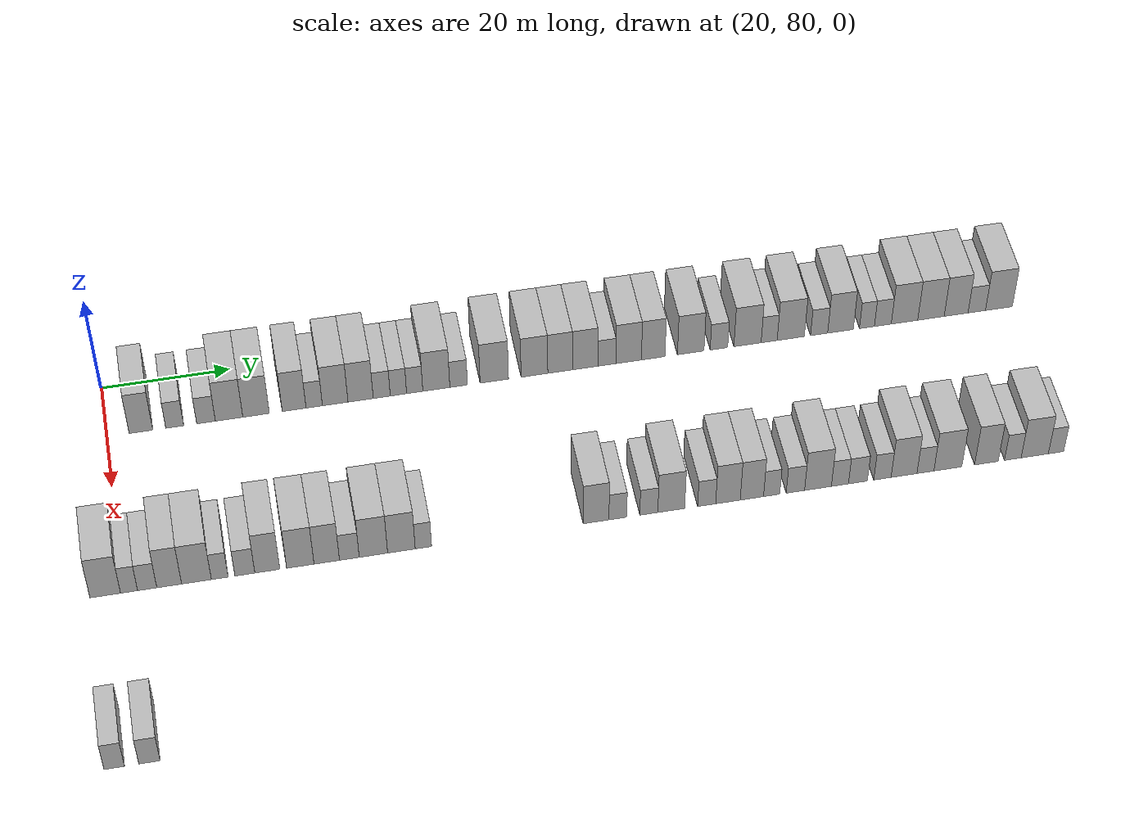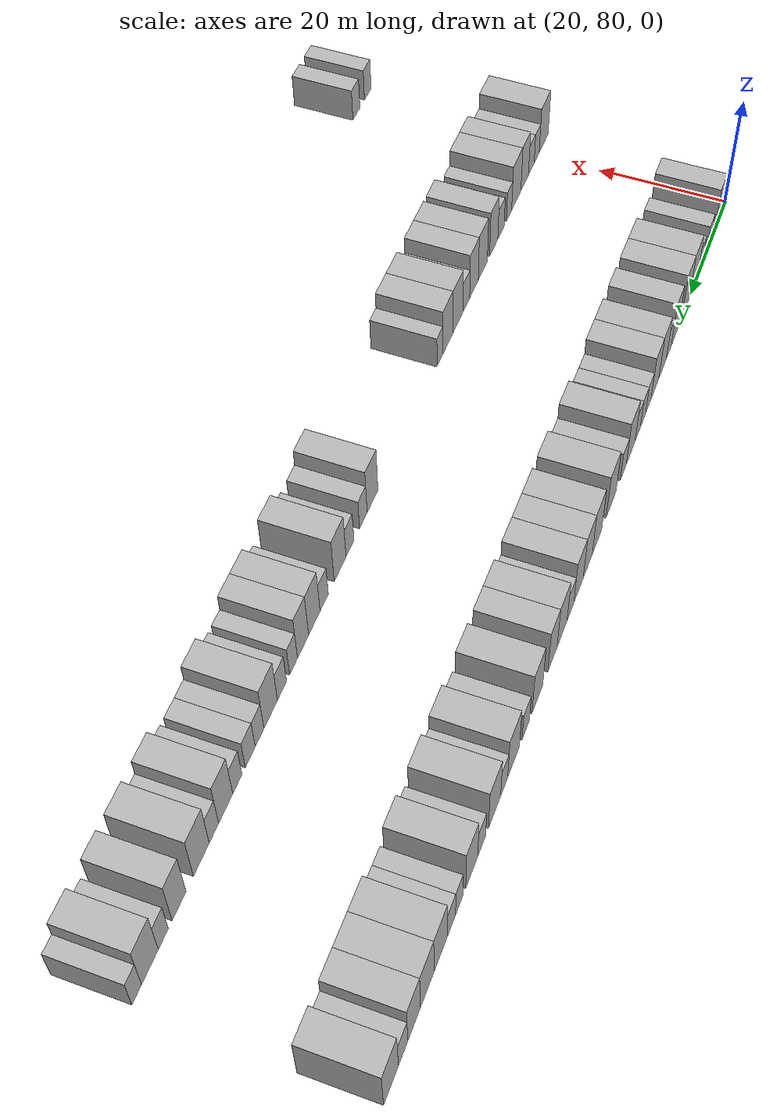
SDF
<sdf version="1.6">
 <world name="default">
  <model name="building_129">
   <static>1</static>
   <pose>25.0000 85.2007 0 0.000000 0.000000 0.000000</pose>
   <link name="link">
    <pose>0 0 4.50 0 0 0</pose>
    <collision name="collision"><geometry><box><size>10.0000 3.6247 9.0000</size></box></geometry></collision>
    <visual name="visual">
     <cast_shadows>0</cast_shadows>
     <geometry><box><size>10.0000 3.6247 9.0000</size></box></geometry>
     <material>
      <script>
       <uri>model://HANNAS_wall/materials/scripts</uri>
       <uri>model://HANNAS_wall/materials/textures</uri>
       <name>vrc/HANNAS_wall</name>
      </script>
     </material>
    </visual>
   </link>
  </model>
  <model name="building_130">
   <static>1</static>
   <pose>25.0000 90.3927 0 0.000000 0.000000 0.000000</pose>
   <link name="link">
    <pose>0 0 3.00 0 0 0</pose>
    <collision name="collision"><geometry><box><size>10.0000 2.7592 6.0000</size></box></geometry></collision>
    <visual name="visual">
     <cast_shadows>0</cast_shadows>
     <geometry><box><size>10.0000 2.7592 6.0000</size></box></geometry>
     <material>
      <script>
       <uri>model://HANNAS_wall/materials/scripts</uri>
       <uri>model://HANNAS_wall/materials/textures</uri>
       <name>vrc/HANNAS_wall</name>
      </script>
     </material>
    </visual>
   </link>
  </model>
  <model name="building_131">
   <static>1</static>
   <pose>25.0000 95.2137 0 0.000000 0.000000 0.000000</pose>
   <link name="link">
    <pose>0 0 3.00 0 0 0</pose>
    <collision name="collision"><geometry><box><size>10.0000 2.8828 6.0000</size></box></geometry></collision>
    <visual name="visual">
     <cast_shadows>0</cast_shadows>
     <geometry><box><size>10.0000 2.8828 6.0000</size></box></geometry>
     <material>
      <script>
       <uri>model://HANNAS_wall/materials/scripts</uri>
       <uri>model://HANNAS_wall/materials/textures</uri>
       <name>vrc/HANNAS_wall</name>
      </script>
     </material>
    </visual>
   </link>
  </model>
  <model name="building_132">
   <static>1</static>
   <pose>25.0000 98.7741 0 0.000000 0.000000 0.000000</pose>
   <link name="link">
    <pose>0 0 4.50 0 0 0</pose>
    <collision name="collision"><geometry><box><size>10.0000 4.2381 9.0000</size></box></geometry></collision>
    <visual name="visual">
     <cast_shadows>0</cast_shadows>
     <geometry><box><size>10.0000 4.2381 9.0000</size></box></geometry>
     <material>
      <script>
       <uri>model://HANNAS_wall/materials/scripts</uri>
       <uri>model://HANNAS_wall/materials/textures</uri>
       <name>vrc/HANNAS_wall</name>
      </script>
     </material>
    </visual>
   </link>
  </model>
  <model name="building_133">
   <static>1</static>
   <pose>25.0000 102.9471 0 0.000000 0.000000 0.000000</pose>
   <link name="link">
    <pose>0 0 4.50 0 0 0</pose>
    <collision name="collision"><geometry><box><size>10.0000 4.1077 9.0000</size></box></geometry></collision>
    <visual name="visual">
     <cast_shadows>0</cast_shadows>
     <geometry><box><size>10.0000 4.1077 9.0000</size></box></geometry>
     <material>
      <script>
       <uri>model://HANNAS_wall/materials/scripts</uri>
       <uri>model://HANNAS_wall/materials/textures</uri>
       <name>vrc/HANNAS_wall</name>
      </script>
     </material>
    </visual>
   </link>
  </model>
  <model name="building_134">
   <static>1</static>
   <pose>25.0000 108.8481 0 0.000000 0.000000 0.000000</pose>
   <link name="link">
    <pose>0 0 4.50 0 0 0</pose>
    <collision name="collision"><geometry><box><size>10.0000 3.6942 9.0000</size></box></geometry></collision>
    <visual name="visual">
     <cast_shadows>0</cast_shadows>
     <geometry><box><size>10.0000 3.6942 9.0000</size></box></geometry>
     <material>
      <script>
       <uri>model://HANNAS_wall/materials/scripts</uri>
       <uri>model://HANNAS_wall/materials/textures</uri>
       <name>vrc/HANNAS_wall</name>
      </script>
     </material>
    </visual>
   </link>
  </model>
  <model name="building_135">
   <static>1</static>
   <pose>25.0000 111.9696 0 0.000000 0.000000 0.000000</pose>
   <link name="link">
    <pose>0 0 3.00 0 0 0</pose>
    <collision name="collision"><geometry><box><size>10.0000 2.5489 6.0000</size></box></geometry></collision>
    <visual name="visual">
     <cast_shadows>0</cast_shadows>
     <geometry><box><size>10.0000 2.5489 6.0000</size></box></geometry>
     <material>
      <script>
       <uri>model://HANNAS_wall/materials/scripts</uri>
       <uri>model://HANNAS_wall/materials/textures</uri>
       <name>vrc/HANNAS_wall</name>
      </script>
     </material>
    </visual>
   </link>
  </model>
  <model name="building_136">
   <static>1</static>
   <pose>25.0000 115.2375 0 0.000000 0.000000 0.000000</pose>
   <link name="link">
    <pose>0 0 4.50 0 0 0</pose>
    <collision name="collision"><geometry><box><size>10.0000 3.9867 9.0000</size></box></geometry></collision>
    <visual name="visual">
     <cast_shadows>0</cast_shadows>
     <geometry><box><size>10.0000 3.9867 9.0000</size></box></geometry>
     <material>
      <script>
       <uri>model://HANNAS_wall/materials/scripts</uri>
       <uri>model://HANNAS_wall/materials/textures</uri>
       <name>vrc/HANNAS_wall</name>
      </script>
     </material>
    </visual>
   </link>
  </model>
  <model name="building_137">
   <static>1</static>
   <pose>25.0000 119.2032 0 0.000000 0.000000 0.000000</pose>
   <link name="link">
    <pose>0 0 4.50 0 0 0</pose>
    <collision name="collision"><geometry><box><size>10.0000 3.9447 9.0000</size></box></geometry></collision>
    <visual name="visual">
     <cast_shadows>0</cast_shadows>
     <geometry><box><size>10.0000 3.9447 9.0000</size></box></geometry>
     <material>
      <script>
       <uri>model://HANNAS_wall/materials/scripts</uri>
       <uri>model://HANNAS_wall/materials/textures</uri>
       <name>vrc/HANNAS_wall</name>
      </script>
     </material>
    </visual>
   </link>
  </model>
  <model name="building_138">
   <static>1</static>
   <pose>25.0000 122.5065 0 0.000000 0.000000 0.000000</pose>
   <link name="link">
    <pose>0 0 3.00 0 0 0</pose>
    <collision name="collision"><geometry><box><size>10.0000 2.6620 6.0000</size></box></geometry></collision>
    <visual name="visual">
     <cast_shadows>0</cast_shadows>
     <geometry><box><size>10.0000 2.6620 6.0000</size></box></geometry>
     <material>
      <script>
       <uri>model://HANNAS_wall/materials/scripts</uri>
       <uri>model://HANNAS_wall/materials/textures</uri>
       <name>vrc/HANNAS_wall</name>
      </script>
     </material>
    </visual>
   </link>
  </model>
  <model name="building_139">
   <static>1</static>
   <pose>25.0000 125.1219 0 0.000000 0.000000 0.000000</pose>
   <link name="link">
    <pose>0 0 3.00 0 0 0</pose>
    <collision name="collision"><geometry><box><size>10.0000 2.5686 6.0000</size></box></geometry></collision>
    <visual name="visual">
     <cast_shadows>0</cast_shadows>
     <geometry><box><size>10.0000 2.5686 6.0000</size></box></geometry>
     <material>
      <script>
       <uri>model://HANNAS_wall/materials/scripts</uri>
       <uri>model://HANNAS_wall/materials/textures</uri>
       <name>vrc/HANNAS_wall</name>
      </script>
     </material>
    </visual>
   </link>
  </model>
  <model name="building_140">
   <static>1</static>
   <pose>25.0000 127.6770 0 0.000000 0.000000 0.000000</pose>
   <link name="link">
    <pose>0 0 3.00 0 0 0</pose>
    <collision name="collision"><geometry><box><size>10.0000 2.5416 6.0000</size></box></geometry></collision>
    <visual name="visual">
     <cast_shadows>0</cast_shadows>
     <geometry><box><size>10.0000 2.5416 6.0000</size></box></geometry>
     <material>
      <script>
       <uri>model://HANNAS_wall/materials/scripts</uri>
       <uri>model://HANNAS_wall/materials/textures</uri>
       <name>vrc/HANNAS_wall</name>
      </script>
     </material>
    </visual>
   </link>
  </model>
  <model name="building_141">
   <static>1</static>
   <pose>25.0000 131.0702 0 0.000000 0.000000 0.000000</pose>
   <link name="link">
    <pose>0 0 4.50 0 0 0</pose>
    <collision name="collision"><geometry><box><size>10.0000 4.2448 9.0000</size></box></geometry></collision>
    <visual name="visual">
     <cast_shadows>0</cast_shadows>
     <geometry><box><size>10.0000 4.2448 9.0000</size></box></geometry>
     <material>
      <script>
       <uri>model://HANNAS_wall/materials/scripts</uri>
       <uri>model://HANNAS_wall/materials/textures</uri>
       <name>vrc/HANNAS_wall</name>
      </script>
     </material>
    </visual>
   </link>
  </model>
  <model name="building_142">
   <static>1</static>
   <pose>25.0000 134.5761 0 0.000000 0.000000 0.000000</pose>
   <link name="link">
    <pose>0 0 3.00 0 0 0</pose>
    <collision name="collision"><geometry><box><size>10.0000 2.7672 6.0000</size></box></geometry></collision>
    <visual name="visual">
     <cast_shadows>0</cast_shadows>
     <geometry><box><size>10.0000 2.7672 6.0000</size></box></geometry>
     <material>
      <script>
       <uri>model://HANNAS_wall/materials/scripts</uri>
       <uri>model://HANNAS_wall/materials/textures</uri>
       <name>vrc/HANNAS_wall</name>
      </script>
     </material>
    </visual>
   </link>
  </model>
  <model name="building_143">
   <static>1</static>
   <pose>25.0000 140.2045 0 0.000000 0.000000 0.000000</pose>
   <link name="link">
    <pose>0 0 4.50 0 0 0</pose>
    <collision name="collision"><geometry><box><size>10.0000 4.4896 9.0000</size></box></geometry></collision>
    <visual name="visual">
     <cast_shadows>0</cast_shadows>
     <geometry><box><size>10.0000 4.4896 9.0000</size></box></geometry>
     <material>
      <script>
       <uri>model://HANNAS_wall/materials/scripts</uri>
       <uri>model://HANNAS_wall/materials/textures</uri>
       <name>vrc/HANNAS_wall</name>
      </script>
     </material>
    </visual>
   </link>
  </model>
  <model name="building_144">
   <static>1</static>
   <pose>25.0000 146.5641 0 0.000000 0.000000 0.000000</pose>
   <link name="link">
    <pose>0 0 4.50 0 0 0</pose>
    <collision name="collision"><geometry><box><size>10.0000 4.2295 9.0000</size></box></geometry></collision>
    <visual name="visual">
     <cast_shadows>0</cast_shadows>
     <geometry><box><size>10.0000 4.2295 9.0000</size></box></geometry>
     <material>
      <script>
       <uri>model://HANNAS_wall/materials/scripts</uri>
       <uri>model://HANNAS_wall/materials/textures</uri>
       <name>vrc/HANNAS_wall</name>
      </script>
     </material>
    </visual>
   </link>
  </model>
  <model name="building_145">
   <static>1</static>
   <pose>25.0000 150.6506 0 0.000000 0.000000 0.000000</pose>
   <link name="link">
    <pose>0 0 4.50 0 0 0</pose>
    <collision name="collision"><geometry><box><size>10.0000 3.9434 9.0000</size></box></geometry></collision>
    <visual name="visual">
     <cast_shadows>0</cast_shadows>
     <geometry><box><size>10.0000 3.9434 9.0000</size></box></geometry>
     <material>
      <script>
       <uri>model://HANNAS_wall/materials/scripts</uri>
       <uri>model://HANNAS_wall/materials/textures</uri>
       <name>vrc/HANNAS_wall</name>
      </script>
     </material>
    </visual>
   </link>
  </model>
  <model name="building_146">
   <static>1</static>
   <pose>25.0000 154.6232 0 0.000000 0.000000 0.000000</pose>
   <link name="link">
    <pose>0 0 4.50 0 0 0</pose>
    <collision name="collision"><geometry><box><size>10.0000 4.0018 9.0000</size></box></geometry></collision>
    <visual name="visual">
     <cast_shadows>0</cast_shadows>
     <geometry><box><size>10.0000 4.0018 9.0000</size></box></geometry>
     <material>
      <script>
       <uri>model://HANNAS_wall/materials/scripts</uri>
       <uri>model://HANNAS_wall/materials/textures</uri>
       <name>vrc/HANNAS_wall</name>
      </script>
     </material>
    </visual>
   </link>
  </model>
  <model name="building_147">
   <static>1</static>
   <pose>25.0000 158.0611 0 0.000000 0.000000 0.000000</pose>
   <link name="link">
    <pose>0 0 3.00 0 0 0</pose>
    <collision name="collision"><geometry><box><size>10.0000 2.8740 6.0000</size></box></geometry></collision>
    <visual name="visual">
     <cast_shadows>0</cast_shadows>
     <geometry><box><size>10.0000 2.8740 6.0000</size></box></geometry>
     <material>
      <script>
       <uri>model://HANNAS_wall/materials/scripts</uri>
       <uri>model://HANNAS_wall/materials/textures</uri>
       <name>vrc/HANNAS_wall</name>
      </script>
     </material>
    </visual>
   </link>
  </model>
  <model name="building_148">
   <static>1</static>
   <pose>25.0000 161.5451 0 0.000000 0.000000 0.000000</pose>
   <link name="link">
    <pose>0 0 4.50 0 0 0</pose>
    <collision name="collision"><geometry><box><size>10.0000 4.0940 9.0000</size></box></geometry></collision>
    <visual name="visual">
     <cast_shadows>0</cast_shadows>
     <geometry><box><size>10.0000 4.0940 9.0000</size></box></geometry>
     <material>
      <script>
       <uri>model://HANNAS_wall/materials/scripts</uri>
       <uri>model://HANNAS_wall/materials/textures</uri>
       <name>vrc/HANNAS_wall</name>
      </script>
     </material>
    </visual>
   </link>
  </model>
  <model name="building_149">
   <static>1</static>
   <pose>25.0000 165.4775 0 0.000000 0.000000 0.000000</pose>
   <link name="link">
    <pose>0 0 4.50 0 0 0</pose>
    <collision name="collision"><geometry><box><size>10.0000 3.7706 9.0000</size></box></geometry></collision>
    <visual name="visual">
     <cast_shadows>0</cast_shadows>
     <geometry><box><size>10.0000 3.7706 9.0000</size></box></geometry>
     <material>
      <script>
       <uri>model://HANNAS_wall/materials/scripts</uri>
       <uri>model://HANNAS_wall/materials/textures</uri>
       <name>vrc/HANNAS_wall</name>
      </script>
     </material>
    </visual>
   </link>
  </model>
  <model name="building_150">
   <static>1</static>
   <pose>25.0000 171.4954 0 0.000000 0.000000 0.000000</pose>
   <link name="link">
    <pose>0 0 4.50 0 0 0</pose>
    <collision name="collision"><geometry><box><size>10.0000 4.2653 9.0000</size></box></geometry></collision>
    <visual name="visual">
     <cast_shadows>0</cast_shadows>
     <geometry><box><size>10.0000 4.2653 9.0000</size></box></geometry>
     <material>
      <script>
       <uri>model://HANNAS_wall/materials/scripts</uri>
       <uri>model://HANNAS_wall/materials/textures</uri>
       <name>vrc/HANNAS_wall</name>
      </script>
     </material>
    </visual>
   </link>
  </model>
  <model name="building_151">
   <static>1</static>
   <pose>25.0000 176.0358 0 0.000000 0.000000 0.000000</pose>
   <link name="link">
    <pose>0 0 3.00 0 0 0</pose>
    <collision name="collision"><geometry><box><size>10.0000 2.8155 6.0000</size></box></geometry></collision>
    <visual name="visual">
     <cast_shadows>0</cast_shadows>
     <geometry><box><size>10.0000 2.8155 6.0000</size></box></geometry>
     <material>
      <script>
       <uri>model://HANNAS_wall/materials/scripts</uri>
       <uri>model://HANNAS_wall/materials/textures</uri>
       <name>vrc/HANNAS_wall</name>
      </script>
     </material>
    </visual>
   </link>
  </model>
  <model name="building_152">
   <static>1</static>
   <pose>25.0000 180.6423 0 0.000000 0.000000 0.000000</pose>
   <link name="link">
    <pose>0 0 4.50 0 0 0</pose>
    <collision name="collision"><geometry><box><size>10.0000 4.3974 9.0000</size></box></geometry></collision>
    <visual name="visual">
     <cast_shadows>0</cast_shadows>
     <geometry><box><size>10.0000 4.3974 9.0000</size></box></geometry>
     <material>
      <script>
       <uri>model://HANNAS_wall/materials/scripts</uri>
       <uri>model://HANNAS_wall/materials/textures</uri>
       <name>vrc/HANNAS_wall</name>
      </script>
     </material>
    </visual>
   </link>
  </model>
  <model name="building_153">
   <static>1</static>
   <pose>25.0000 184.1410 0 0.000000 0.000000 0.000000</pose>
   <link name="link">
    <pose>0 0 3.00 0 0 0</pose>
    <collision name="collision"><geometry><box><size>10.0000 2.6000 6.0000</size></box></geometry></collision>
    <visual name="visual">
     <cast_shadows>0</cast_shadows>
     <geometry><box><size>10.0000 2.6000 6.0000</size></box></geometry>
     <material>
      <script>
       <uri>model://HANNAS_wall/materials/scripts</uri>
       <uri>model://HANNAS_wall/materials/textures</uri>
       <name>vrc/HANNAS_wall</name>
      </script>
     </material>
    </visual>
   </link>
  </model>
  <model name="building_154">
   <static>1</static>
   <pose>25.0000 187.6387 0 0.000000 0.000000 0.000000</pose>
   <link name="link">
    <pose>0 0 4.50 0 0 0</pose>
    <collision name="collision"><geometry><box><size>10.0000 4.3954 9.0000</size></box></geometry></collision>
    <visual name="visual">
     <cast_shadows>0</cast_shadows>
     <geometry><box><size>10.0000 4.3954 9.0000</size></box></geometry>
     <material>
      <script>
       <uri>model://HANNAS_wall/materials/scripts</uri>
       <uri>model://HANNAS_wall/materials/textures</uri>
       <name>vrc/HANNAS_wall</name>
      </script>
     </material>
    </visual>
   </link>
  </model>
  <model name="building_155">
   <static>1</static>
   <pose>25.0000 192.2295 0 0.000000 0.000000 0.000000</pose>
   <link name="link">
    <pose>0 0 3.00 0 0 0</pose>
    <collision name="collision"><geometry><box><size>10.0000 2.7862 6.0000</size></box></geometry></collision>
    <visual name="visual">
     <cast_shadows>0</cast_shadows>
     <geometry><box><size>10.0000 2.7862 6.0000</size></box></geometry>
     <material>
      <script>
       <uri>model://HANNAS_wall/materials/scripts</uri>
       <uri>model://HANNAS_wall/materials/textures</uri>
       <name>vrc/HANNAS_wall</name>
      </script>
     </material>
    </visual>
   </link>
  </model>
  <model name="building_156">
   <static>1</static>
   <pose>25.0000 195.7050 0 0.000000 0.000000 0.000000</pose>
   <link name="link">
    <pose>0 0 4.50 0 0 0</pose>
    <collision name="collision"><geometry><box><size>10.0000 4.1648 9.0000</size></box></geometry></collision>
    <visual name="visual">
     <cast_shadows>0</cast_shadows>
     <geometry><box><size>10.0000 4.1648 9.0000</size></box></geometry>
     <material>
      <script>
       <uri>model://HANNAS_wall/materials/scripts</uri>
       <uri>model://HANNAS_wall/materials/textures</uri>
       <name>vrc/HANNAS_wall</name>
      </script>
     </material>
    </visual>
   </link>
  </model>
  <model name="building_157">
   <static>1</static>
   <pose>25.0000 200.0089 0 0.000000 0.000000 0.000000</pose>
   <link name="link">
    <pose>0 0 3.00 0 0 0</pose>
    <collision name="collision"><geometry><box><size>10.0000 2.4429 6.0000</size></box></geometry></collision>
    <visual name="visual">
     <cast_shadows>0</cast_shadows>
     <geometry><box><size>10.0000 2.4429 6.0000</size></box></geometry>
     <material>
      <script>
       <uri>model://HANNAS_wall/materials/scripts</uri>
       <uri>model://HANNAS_wall/materials/textures</uri>
       <name>vrc/HANNAS_wall</name>
      </script>
     </material>
    </visual>
   </link>
  </model>
  <model name="building_158">
   <static>1</static>
   <pose>25.0000 202.6057 0 0.000000 0.000000 0.000000</pose>
   <link name="link">
    <pose>0 0 3.00 0 0 0</pose>
    <collision name="collision"><geometry><box><size>10.0000 2.7508 6.0000</size></box></geometry></collision>
    <visual name="visual">
     <cast_shadows>0</cast_shadows>
     <geometry><box><size>10.0000 2.7508 6.0000</size></box></geometry>
     <material>
      <script>
       <uri>model://HANNAS_wall/materials/scripts</uri>
       <uri>model://HANNAS_wall/materials/textures</uri>
       <name>vrc/HANNAS_wall</name>
      </script>
     </material>
    </visual>
   </link>
  </model>
  <model name="building_159">
   <static>1</static>
   <pose>25.0000 206.1537 0 0.000000 0.000000 0.000000</pose>
   <link name="link">
    <pose>0 0 4.50 0 0 0</pose>
    <collision name="collision"><geometry><box><size>10.0000 4.3452 9.0000</size></box></geometry></collision>
    <visual name="visual">
     <cast_shadows>0</cast_shadows>
     <geometry><box><size>10.0000 4.3452 9.0000</size></box></geometry>
     <material>
      <script>
       <uri>model://HANNAS_wall/materials/scripts</uri>
       <uri>model://HANNAS_wall/materials/textures</uri>
       <name>vrc/HANNAS_wall</name>
      </script>
     </material>
    </visual>
   </link>
  </model>
  <model name="building_160">
   <static>1</static>
   <pose>25.0000 210.4923 0 0.000000 0.000000 0.000000</pose>
   <link name="link">
    <pose>0 0 4.50 0 0 0</pose>
    <collision name="collision"><geometry><box><size>10.0000 4.3322 9.0000</size></box></geometry></collision>
    <visual name="visual">
     <cast_shadows>0</cast_shadows>
     <geometry><box><size>10.0000 4.3322 9.0000</size></box></geometry>
     <material>
      <script>
       <uri>model://HANNAS_wall/materials/scripts</uri>
       <uri>model://HANNAS_wall/materials/textures</uri>
       <name>vrc/HANNAS_wall</name>
      </script>
     </material>
    </visual>
   </link>
  </model>
  <model name="building_161">
   <static>1</static>
   <pose>25.0000 214.6215 0 0.000000 0.000000 0.000000</pose>
   <link name="link">
    <pose>0 0 4.50 0 0 0</pose>
    <collision name="collision"><geometry><box><size>10.0000 3.9262 9.0000</size></box></geometry></collision>
    <visual name="visual">
     <cast_shadows>0</cast_shadows>
     <geometry><box><size>10.0000 3.9262 9.0000</size></box></geometry>
     <material>
      <script>
       <uri>model://HANNAS_wall/materials/scripts</uri>
       <uri>model://HANNAS_wall/materials/textures</uri>
       <name>vrc/HANNAS_wall</name>
      </script>
     </material>
    </visual>
   </link>
  </model>
  <model name="building_162">
   <static>1</static>
   <pose>25.0000 218.0183 0 0.000000 0.000000 0.000000</pose>
   <link name="link">
    <pose>0 0 3.00 0 0 0</pose>
    <collision name="collision"><geometry><box><size>10.0000 2.8673 6.0000</size></box></geometry></collision>
    <visual name="visual">
     <cast_shadows>0</cast_shadows>
     <geometry><box><size>10.0000 2.8673 6.0000</size></box></geometry>
     <material>
      <script>
       <uri>model://HANNAS_wall/materials/scripts</uri>
       <uri>model://HANNAS_wall/materials/textures</uri>
       <name>vrc/HANNAS_wall</name>
      </script>
     </material>
    </visual>
   </link>
  </model>
  <model name="building_163">
   <static>1</static>
   <pose>25.0000 221.6660 0 0.000000 0.000000 0.000000</pose>
   <link name="link">
    <pose>0 0 4.50 0 0 0</pose>
    <collision name="collision"><geometry><box><size>10.0000 4.4280 9.0000</size></box></geometry></collision>
    <visual name="visual">
     <cast_shadows>0</cast_shadows>
     <geometry><box><size>10.0000 4.4280 9.0000</size></box></geometry>
     <material>
      <script>
       <uri>model://HANNAS_wall/materials/scripts</uri>
       <uri>model://HANNAS_wall/materials/textures</uri>
       <name>vrc/HANNAS_wall</name>
      </script>
     </material>
    </visual>
   </link>
  </model>
  <model name="building_351">
   <static>1</static>
   <pose>55.0000 77.3051 0 0.000000 0.000000 0.000000</pose>
   <link name="link">
    <pose>0 0 4.50 0 0 0</pose>
    <collision name="collision"><geometry><box><size>10.0000 4.4815 9.0000</size></box></geometry></collision>
    <visual name="visual">
     <cast_shadows>0</cast_shadows>
     <geometry><box><size>10.0000 4.4815 9.0000</size></box></geometry>
     <material>
      <script>
       <uri>model://HANNAS_wall/materials/scripts</uri>
       <uri>model://HANNAS_wall/materials/textures</uri>
       <name>vrc/HANNAS_wall</name>
      </script>
     </material>
    </visual>
   </link>
  </model>
  <model name="building_352">
   <static>1</static>
   <pose>55.0000 80.7925 0 0.000000 0.000000 0.000000</pose>
   <link name="link">
    <pose>0 0 3.00 0 0 0</pose>
    <collision name="collision"><geometry><box><size>10.0000 2.4933 6.0000</size></box></geometry></collision>
    <visual name="visual">
     <cast_shadows>0</cast_shadows>
     <geometry><box><size>10.0000 2.4933 6.0000</size></box></geometry>
     <material>
      <script>
       <uri>model://HANNAS_wall/materials/scripts</uri>
       <uri>model://HANNAS_wall/materials/textures</uri>
       <name>vrc/HANNAS_wall</name>
      </script>
     </material>
    </visual>
   </link>
  </model>
  <model name="building_353">
   <static>1</static>
   <pose>55.0000 83.4496 0 0.000000 0.000000 0.000000</pose>
   <link name="link">
    <pose>0 0 3.00 0 0 0</pose>
    <collision name="collision"><geometry><box><size>10.0000 2.8209 6.0000</size></box></geometry></collision>
    <visual name="visual">
     <cast_shadows>0</cast_shadows>
     <geometry><box><size>10.0000 2.8209 6.0000</size></box></geometry>
     <material>
      <script>
       <uri>model://HANNAS_wall/materials/scripts</uri>
       <uri>model://HANNAS_wall/materials/textures</uri>
       <name>vrc/HANNAS_wall</name>
      </script>
     </material>
    </visual>
   </link>
  </model>
  <model name="building_354">
   <static>1</static>
   <pose>55.0000 86.6838 0 0.000000 0.000000 0.000000</pose>
   <link name="link">
    <pose>0 0 4.50 0 0 0</pose>
    <collision name="collision"><geometry><box><size>10.0000 3.6476 9.0000</size></box></geometry></collision>
    <visual name="visual">
     <cast_shadows>0</cast_shadows>
     <geometry><box><size>10.0000 3.6476 9.0000</size></box></geometry>
     <material>
      <script>
       <uri>model://HANNAS_wall/materials/scripts</uri>
       <uri>model://HANNAS_wall/materials/textures</uri>
       <name>vrc/HANNAS_wall</name>
      </script>
     </material>
    </visual>
   </link>
  </model>
  <model name="building_355">
   <static>1</static>
   <pose>55.0000 90.7000 0 0.000000 0.000000 0.000000</pose>
   <link name="link">
    <pose>0 0 4.50 0 0 0</pose>
    <collision name="collision"><geometry><box><size>10.0000 4.3848 9.0000</size></box></geometry></collision>
    <visual name="visual">
     <cast_shadows>0</cast_shadows>
     <geometry><box><size>10.0000 4.3848 9.0000</size></box></geometry>
     <material>
      <script>
       <uri>model://HANNAS_wall/materials/scripts</uri>
       <uri>model://HANNAS_wall/materials/textures</uri>
       <name>vrc/HANNAS_wall</name>
      </script>
     </material>
    </visual>
   </link>
  </model>
  <model name="building_356">
   <static>1</static>
   <pose>55.0000 94.1309 0 0.000000 0.000000 0.000000</pose>
   <link name="link">
    <pose>0 0 3.00 0 0 0</pose>
    <collision name="collision"><geometry><box><size>10.0000 2.4769 6.0000</size></box></geometry></collision>
    <visual name="visual">
     <cast_shadows>0</cast_shadows>
     <geometry><box><size>10.0000 2.4769 6.0000</size></box></geometry>
     <material>
      <script>
       <uri>model://HANNAS_wall/materials/scripts</uri>
       <uri>model://HANNAS_wall/materials/textures</uri>
       <name>vrc/HANNAS_wall</name>
      </script>
     </material>
    </visual>
   </link>
  </model>
  <model name="building_357">
   <static>1</static>
   <pose>55.0000 97.8429 0 0.000000 0.000000 0.000000</pose>
   <link name="link">
    <pose>0 0 3.00 0 0 0</pose>
    <collision name="collision"><geometry><box><size>10.0000 2.9472 6.0000</size></box></geometry></collision>
    <visual name="visual">
     <cast_shadows>0</cast_shadows>
     <geometry><box><size>10.0000 2.9472 6.0000</size></box></geometry>
     <material>
      <script>
       <uri>model://HANNAS_wall/materials/scripts</uri>
       <uri>model://HANNAS_wall/materials/textures</uri>
       <name>vrc/HANNAS_wall</name>
      </script>
     </material>
    </visual>
   </link>
  </model>
  <model name="building_358">
   <static>1</static>
   <pose>55.0000 101.1719 0 0.000000 0.000000 0.000000</pose>
   <link name="link">
    <pose>0 0 4.50 0 0 0</pose>
    <collision name="collision"><geometry><box><size>10.0000 3.7108 9.0000</size></box></geometry></collision>
    <visual name="visual">
     <cast_shadows>0</cast_shadows>
     <geometry><box><size>10.0000 3.7108 9.0000</size></box></geometry>
     <material>
      <script>
       <uri>model://HANNAS_wall/materials/scripts</uri>
       <uri>model://HANNAS_wall/materials/textures</uri>
       <name>vrc/HANNAS_wall</name>
      </script>
     </material>
    </visual>
   </link>
  </model>
  <model name="building_359">
   <static>1</static>
   <pose>55.0000 106.0613 0 0.000000 0.000000 0.000000</pose>
   <link name="link">
    <pose>0 0 4.50 0 0 0</pose>
    <collision name="collision"><geometry><box><size>10.0000 4.0681 9.0000</size></box></geometry></collision>
    <visual name="visual">
     <cast_shadows>0</cast_shadows>
     <geometry><box><size>10.0000 4.0681 9.0000</size></box></geometry>
     <material>
      <script>
       <uri>model://HANNAS_wall/materials/scripts</uri>
       <uri>model://HANNAS_wall/materials/textures</uri>
       <name>vrc/HANNAS_wall</name>
      </script>
     </material>
    </visual>
   </link>
  </model>
  <model name="building_360">
   <static>1</static>
   <pose>55.0000 109.9937 0 0.000000 0.000000 0.000000</pose>
   <link name="link">
    <pose>0 0 4.50 0 0 0</pose>
    <collision name="collision"><geometry><box><size>10.0000 3.7965 9.0000</size></box></geometry></collision>
    <visual name="visual">
     <cast_shadows>0</cast_shadows>
     <geometry><box><size>10.0000 3.7965 9.0000</size></box></geometry>
     <material>
      <script>
       <uri>model://HANNAS_wall/materials/scripts</uri>
       <uri>model://HANNAS_wall/materials/textures</uri>
       <name>vrc/HANNAS_wall</name>
      </script>
     </material>
    </visual>
   </link>
  </model>
  <model name="building_361">
   <static>1</static>
   <pose>55.0000 113.3655 0 0.000000 0.000000 0.000000</pose>
   <link name="link">
    <pose>0 0 3.00 0 0 0</pose>
    <collision name="collision"><geometry><box><size>10.0000 2.9471 6.0000</size></box></geometry></collision>
    <visual name="visual">
     <cast_shadows>0</cast_shadows>
     <geometry><box><size>10.0000 2.9471 6.0000</size></box></geometry>
     <material>
      <script>
       <uri>model://HANNAS_wall/materials/scripts</uri>
       <uri>model://HANNAS_wall/materials/textures</uri>
       <name>vrc/HANNAS_wall</name>
      </script>
     </material>
    </visual>
   </link>
  </model>
  <model name="building_362">
   <static>1</static>
   <pose>55.0000 116.9619 0 0.000000 0.000000 0.000000</pose>
   <link name="link">
    <pose>0 0 4.50 0 0 0</pose>
    <collision name="collision"><geometry><box><size>10.0000 4.2457 9.0000</size></box></geometry></collision>
    <visual name="visual">
     <cast_shadows>0</cast_shadows>
     <geometry><box><size>10.0000 4.2457 9.0000</size></box></geometry>
     <material>
      <script>
       <uri>model://HANNAS_wall/materials/scripts</uri>
       <uri>model://HANNAS_wall/materials/textures</uri>
       <name>vrc/HANNAS_wall</name>
      </script>
     </material>
    </visual>
   </link>
  </model>
  <model name="building_363">
   <static>1</static>
   <pose>55.0000 121.1535 0 0.000000 0.000000 0.000000</pose>
   <link name="link">
    <pose>0 0 4.50 0 0 0</pose>
    <collision name="collision"><geometry><box><size>10.0000 4.1374 9.0000</size></box></geometry></collision>
    <visual name="visual">
     <cast_shadows>0</cast_shadows>
     <geometry><box><size>10.0000 4.1374 9.0000</size></box></geometry>
     <material>
      <script>
       <uri>model://HANNAS_wall/materials/scripts</uri>
       <uri>model://HANNAS_wall/materials/textures</uri>
       <name>vrc/HANNAS_wall</name>
      </script>
     </material>
    </visual>
   </link>
  </model>
  <model name="building_364">
   <static>1</static>
   <pose>55.0000 124.4486 0 0.000000 0.000000 0.000000</pose>
   <link name="link">
    <pose>0 0 3.00 0 0 0</pose>
    <collision name="collision"><geometry><box><size>10.0000 2.4528 6.0000</size></box></geometry></collision>
    <visual name="visual">
     <cast_shadows>0</cast_shadows>
     <geometry><box><size>10.0000 2.4528 6.0000</size></box></geometry>
     <material>
      <script>
       <uri>model://HANNAS_wall/materials/scripts</uri>
       <uri>model://HANNAS_wall/materials/textures</uri>
       <name>vrc/HANNAS_wall</name>
      </script>
     </material>
    </visual>
   </link>
  </model>
  <model name="building_365">
   <static>1</static>
   <pose>55.0000 150.5681 0 0.000000 0.000000 0.000000</pose>
   <link name="link">
    <pose>0 0 4.50 0 0 0</pose>
    <collision name="collision"><geometry><box><size>10.0000 3.9288 9.0000</size></box></geometry></collision>
    <visual name="visual">
     <cast_shadows>0</cast_shadows>
     <geometry><box><size>10.0000 3.9288 9.0000</size></box></geometry>
     <material>
      <script>
       <uri>model://HANNAS_wall/materials/scripts</uri>
       <uri>model://HANNAS_wall/materials/textures</uri>
       <name>vrc/HANNAS_wall</name>
      </script>
     </material>
    </visual>
   </link>
  </model>
  <model name="building_366">
   <static>1</static>
   <pose>55.0000 153.8892 0 0.000000 0.000000 0.000000</pose>
   <link name="link">
    <pose>0 0 3.00 0 0 0</pose>
    <collision name="collision"><geometry><box><size>10.0000 2.7134 6.0000</size></box></geometry></collision>
    <visual name="visual">
     <cast_shadows>0</cast_shadows>
     <geometry><box><size>10.0000 2.7134 6.0000</size></box></geometry>
     <material>
      <script>
       <uri>model://HANNAS_wall/materials/scripts</uri>
       <uri>model://HANNAS_wall/materials/textures</uri>
       <name>vrc/HANNAS_wall</name>
      </script>
     </material>
    </visual>
   </link>
  </model>
  <model name="building_367">
   <static>1</static>
   <pose>55.0000 158.6235 0 0.000000 0.000000 0.000000</pose>
   <link name="link">
    <pose>0 0 3.00 0 0 0</pose>
    <collision name="collision"><geometry><box><size>10.0000 2.7551 6.0000</size></box></geometry></collision>
    <visual name="visual">
     <cast_shadows>0</cast_shadows>
     <geometry><box><size>10.0000 2.7551 6.0000</size></box></geometry>
     <material>
      <script>
       <uri>model://HANNAS_wall/materials/scripts</uri>
       <uri>model://HANNAS_wall/materials/textures</uri>
       <name>vrc/HANNAS_wall</name>
      </script>
     </material>
    </visual>
   </link>
  </model>
  <model name="building_368">
   <static>1</static>
   <pose>55.0000 162.0531 0 0.000000 0.000000 0.000000</pose>
   <link name="link">
    <pose>0 0 4.50 0 0 0</pose>
    <collision name="collision"><geometry><box><size>10.0000 4.1042 9.0000</size></box></geometry></collision>
    <visual name="visual">
     <cast_shadows>0</cast_shadows>
     <geometry><box><size>10.0000 4.1042 9.0000</size></box></geometry>
     <material>
      <script>
       <uri>model://HANNAS_wall/materials/scripts</uri>
       <uri>model://HANNAS_wall/materials/textures</uri>
       <name>vrc/HANNAS_wall</name>
      </script>
     </material>
    </visual>
   </link>
  </model>
  <model name="building_369">
   <static>1</static>
   <pose>55.0000 167.4927 0 0.000000 0.000000 0.000000</pose>
   <link name="link">
    <pose>0 0 3.00 0 0 0</pose>
    <collision name="collision"><geometry><box><size>10.0000 2.7751 6.0000</size></box></geometry></collision>
    <visual name="visual">
     <cast_shadows>0</cast_shadows>
     <geometry><box><size>10.0000 2.7751 6.0000</size></box></geometry>
     <material>
      <script>
       <uri>model://HANNAS_wall/materials/scripts</uri>
       <uri>model://HANNAS_wall/materials/textures</uri>
       <name>vrc/HANNAS_wall</name>
      </script>
     </material>
    </visual>
   </link>
  </model>
  <model name="building_370">
   <static>1</static>
   <pose>55.0000 170.7730 0 0.000000 0.000000 0.000000</pose>
   <link name="link">
    <pose>0 0 4.50 0 0 0</pose>
    <collision name="collision"><geometry><box><size>10.0000 3.7855 9.0000</size></box></geometry></collision>
    <visual name="visual">
     <cast_shadows>0</cast_shadows>
     <geometry><box><size>10.0000 3.7855 9.0000</size></box></geometry>
     <material>
      <script>
       <uri>model://HANNAS_wall/materials/scripts</uri>
       <uri>model://HANNAS_wall/materials/textures</uri>
       <name>vrc/HANNAS_wall</name>
      </script>
     </material>
    </visual>
   </link>
  </model>
  <model name="building_371">
   <static>1</static>
   <pose>55.0000 174.4674 0 0.000000 0.000000 0.000000</pose>
   <link name="link">
    <pose>0 0 4.50 0 0 0</pose>
    <collision name="collision"><geometry><box><size>10.0000 3.6032 9.0000</size></box></geometry></collision>
    <visual name="visual">
     <cast_shadows>0</cast_shadows>
     <geometry><box><size>10.0000 3.6032 9.0000</size></box></geometry>
     <material>
      <script>
       <uri>model://HANNAS_wall/materials/scripts</uri>
       <uri>model://HANNAS_wall/materials/textures</uri>
       <name>vrc/HANNAS_wall</name>
      </script>
     </material>
    </visual>
   </link>
  </model>
  <model name="building_372">
   <static>1</static>
   <pose>55.0000 177.5203 0 0.000000 0.000000 0.000000</pose>
   <link name="link">
    <pose>0 0 3.00 0 0 0</pose>
    <collision name="collision"><geometry><box><size>10.0000 2.5026 6.0000</size></box></geometry></collision>
    <visual name="visual">
     <cast_shadows>0</cast_shadows>
     <geometry><box><size>10.0000 2.5026 6.0000</size></box></geometry>
     <material>
      <script>
       <uri>model://HANNAS_wall/materials/scripts</uri>
       <uri>model://HANNAS_wall/materials/textures</uri>
       <name>vrc/HANNAS_wall</name>
      </script>
     </material>
    </visual>
   </link>
  </model>
  <model name="building_373">
   <static>1</static>
   <pose>55.0000 181.1951 0 0.000000 0.000000 0.000000</pose>
   <link name="link">
    <pose>0 0 3.00 0 0 0</pose>
    <collision name="collision"><geometry><box><size>10.0000 2.8469 6.0000</size></box></geometry></collision>
    <visual name="visual">
     <cast_shadows>0</cast_shadows>
     <geometry><box><size>10.0000 2.8469 6.0000</size></box></geometry>
     <material>
      <script>
       <uri>model://HANNAS_wall/materials/scripts</uri>
       <uri>model://HANNAS_wall/materials/textures</uri>
       <name>vrc/HANNAS_wall</name>
      </script>
     </material>
    </visual>
   </link>
  </model>
  <model name="building_374">
   <static>1</static>
   <pose>55.0000 184.7015 0 0.000000 0.000000 0.000000</pose>
   <link name="link">
    <pose>0 0 4.50 0 0 0</pose>
    <collision name="collision"><geometry><box><size>10.0000 4.1658 9.0000</size></box></geometry></collision>
    <visual name="visual">
     <cast_shadows>0</cast_shadows>
     <geometry><box><size>10.0000 4.1658 9.0000</size></box></geometry>
     <material>
      <script>
       <uri>model://HANNAS_wall/materials/scripts</uri>
       <uri>model://HANNAS_wall/materials/textures</uri>
       <name>vrc/HANNAS_wall</name>
      </script>
     </material>
    </visual>
   </link>
  </model>
  <model name="building_375">
   <static>1</static>
   <pose>55.0000 188.1087 0 0.000000 0.000000 0.000000</pose>
   <link name="link">
    <pose>0 0 3.00 0 0 0</pose>
    <collision name="collision"><geometry><box><size>10.0000 2.6486 6.0000</size></box></geometry></collision>
    <visual name="visual">
     <cast_shadows>0</cast_shadows>
     <geometry><box><size>10.0000 2.6486 6.0000</size></box></geometry>
     <material>
      <script>
       <uri>model://HANNAS_wall/materials/scripts</uri>
       <uri>model://HANNAS_wall/materials/textures</uri>
       <name>vrc/HANNAS_wall</name>
      </script>
     </material>
    </visual>
   </link>
  </model>
  <model name="building_376">
   <static>1</static>
   <pose>55.0000 190.9050 0 0.000000 0.000000 0.000000</pose>
   <link name="link">
    <pose>0 0 3.00 0 0 0</pose>
    <collision name="collision"><geometry><box><size>10.0000 2.9440 6.0000</size></box></geometry></collision>
    <visual name="visual">
     <cast_shadows>0</cast_shadows>
     <geometry><box><size>10.0000 2.9440 6.0000</size></box></geometry>
     <material>
      <script>
       <uri>model://HANNAS_wall/materials/scripts</uri>
       <uri>model://HANNAS_wall/materials/textures</uri>
       <name>vrc/HANNAS_wall</name>
      </script>
     </material>
    </visual>
   </link>
  </model>
  <model name="building_377">
   <static>1</static>
   <pose>55.0000 194.7269 0 0.000000 0.000000 0.000000</pose>
   <link name="link">
    <pose>0 0 3.00 0 0 0</pose>
    <collision name="collision"><geometry><box><size>10.0000 2.6999 6.0000</size></box></geometry></collision>
    <visual name="visual">
     <cast_shadows>0</cast_shadows>
     <geometry><box><size>10.0000 2.6999 6.0000</size></box></geometry>
     <material>
      <script>
       <uri>model://HANNAS_wall/materials/scripts</uri>
       <uri>model://HANNAS_wall/materials/textures</uri>
       <name>vrc/HANNAS_wall</name>
      </script>
     </material>
    </visual>
   </link>
  </model>
  <model name="building_378">
   <static>1</static>
   <pose>55.0000 198.1039 0 0.000000 0.000000 0.000000</pose>
   <link name="link">
    <pose>0 0 4.50 0 0 0</pose>
    <collision name="collision"><geometry><box><size>10.0000 4.0540 9.0000</size></box></geometry></collision>
    <visual name="visual">
     <cast_shadows>0</cast_shadows>
     <geometry><box><size>10.0000 4.0540 9.0000</size></box></geometry>
     <material>
      <script>
       <uri>model://HANNAS_wall/materials/scripts</uri>
       <uri>model://HANNAS_wall/materials/textures</uri>
       <name>vrc/HANNAS_wall</name>
      </script>
     </material>
    </visual>
   </link>
  </model>
  <model name="building_379">
   <static>1</static>
   <pose>55.0000 201.4589 0 0.000000 0.000000 0.000000</pose>
   <link name="link">
    <pose>0 0 3.00 0 0 0</pose>
    <collision name="collision"><geometry><box><size>10.0000 2.6560 6.0000</size></box></geometry></collision>
    <visual name="visual">
     <cast_shadows>0</cast_shadows>
     <geometry><box><size>10.0000 2.6560 6.0000</size></box></geometry>
     <material>
      <script>
       <uri>model://HANNAS_wall/materials/scripts</uri>
       <uri>model://HANNAS_wall/materials/textures</uri>
       <name>vrc/HANNAS_wall</name>
      </script>
     </material>
    </visual>
   </link>
  </model>
  <model name="building_380">
   <static>1</static>
   <pose>55.0000 204.9812 0 0.000000 0.000000 0.000000</pose>
   <link name="link">
    <pose>0 0 4.50 0 0 0</pose>
    <collision name="collision"><geometry><box><size>10.0000 4.3885 9.0000</size></box></geometry></collision>
    <visual name="visual">
     <cast_shadows>0</cast_shadows>
     <geometry><box><size>10.0000 4.3885 9.0000</size></box></geometry>
     <material>
      <script>
       <uri>model://HANNAS_wall/materials/scripts</uri>
       <uri>model://HANNAS_wall/materials/textures</uri>
       <name>vrc/HANNAS_wall</name>
      </script>
     </material>
    </visual>
   </link>
  </model>
  <model name="building_381">
   <static>1</static>
   <pose>55.0000 211.0368 0 0.000000 0.000000 0.000000</pose>
   <link name="link">
    <pose>0 0 4.50 0 0 0</pose>
    <collision name="collision"><geometry><box><size>10.0000 3.7228 9.0000</size></box></geometry></collision>
    <visual name="visual">
     <cast_shadows>0</cast_shadows>
     <geometry><box><size>10.0000 3.7228 9.0000</size></box></geometry>
     <material>
      <script>
       <uri>model://HANNAS_wall/materials/scripts</uri>
       <uri>model://HANNAS_wall/materials/textures</uri>
       <name>vrc/HANNAS_wall</name>
      </script>
     </material>
    </visual>
   </link>
  </model>
  <model name="building_382">
   <static>1</static>
   <pose>55.0000 215.2088 0 0.000000 0.000000 0.000000</pose>
   <link name="link">
    <pose>0 0 3.00 0 0 0</pose>
    <collision name="collision"><geometry><box><size>10.0000 2.6211 6.0000</size></box></geometry></collision>
    <visual name="visual">
     <cast_shadows>0</cast_shadows>
     <geometry><box><size>10.0000 2.6211 6.0000</size></box></geometry>
     <material>
      <script>
       <uri>model://HANNAS_wall/materials/scripts</uri>
       <uri>model://HANNAS_wall/materials/textures</uri>
       <name>vrc/HANNAS_wall</name>
      </script>
     </material>
    </visual>
   </link>
  </model>
  <model name="building_383">
   <static>1</static>
   <pose>55.0000 218.6719 0 0.000000 0.000000 0.000000</pose>
   <link name="link">
    <pose>0 0 4.50 0 0 0</pose>
    <collision name="collision"><geometry><box><size>10.0000 4.3050 9.0000</size></box></geometry></collision>
    <visual name="visual">
     <cast_shadows>0</cast_shadows>
     <geometry><box><size>10.0000 4.3050 9.0000</size></box></geometry>
     <material>
      <script>
       <uri>model://HANNAS_wall/materials/scripts</uri>
       <uri>model://HANNAS_wall/materials/textures</uri>
       <name>vrc/HANNAS_wall</name>
      </script>
     </material>
    </visual>
   </link>
  </model>
  <model name="building_384">
   <static>1</static>
   <pose>55.0000 222.0426 0 0.000000 0.000000 0.000000</pose>
   <link name="link">
    <pose>0 0 3.00 0 0 0</pose>
    <collision name="collision"><geometry><box><size>10.0000 2.4364 6.0000</size></box></geometry></collision>
    <visual name="visual">
     <cast_shadows>0</cast_shadows>
     <geometry><box><size>10.0000 2.4364 6.0000</size></box></geometry>
     <material>
      <script>
       <uri>model://HANNAS_wall/materials/scripts</uri>
       <uri>model://HANNAS_wall/materials/textures</uri>
       <name>vrc/HANNAS_wall</name>
      </script>
     </material>
    </visual>
   </link>
  </model>
  <model name="building_572">
   <static>1</static>
   <pose>85.0000 76.1410 0 0.000000 0.000000 0.000000</pose>
   <link name="link">
    <pose>0 0 3.00 0 0 0</pose>
    <collision name="collision"><geometry><box><size>10.0000 2.8519 6.0000</size></box></geometry></collision>
    <visual name="visual">
     <cast_shadows>0</cast_shadows>
     <geometry><box><size>10.0000 2.8519 6.0000</size></box></geometry>
     <material>
      <script>
       <uri>model://HANNAS_wall/materials/scripts</uri>
       <uri>model://HANNAS_wall/materials/textures</uri>
       <name>vrc/HANNAS_wall</name>
      </script>
     </material>
    </visual>
   </link>
  </model>
  <model name="building_573">
   <static>1</static>
   <pose>85.0000 81.0582 0 0.000000 0.000000 0.000000</pose>
   <link name="link">
    <pose>0 0 3.00 0 0 0</pose>
    <collision name="collision"><geometry><box><size>10.0000 2.9824 6.0000</size></box></geometry></collision>
    <visual name="visual">
     <cast_shadows>0</cast_shadows>
     <geometry><box><size>10.0000 2.9824 6.0000</size></box></geometry>
     <material>
      <script>
       <uri>model://HANNAS_wall/materials/scripts</uri>
       <uri>model://HANNAS_wall/materials/textures</uri>
       <name>vrc/HANNAS_wall</name>
      </script>
     </material>
    </visual>
   </link>
  </model>
 </world>
</sdf>
